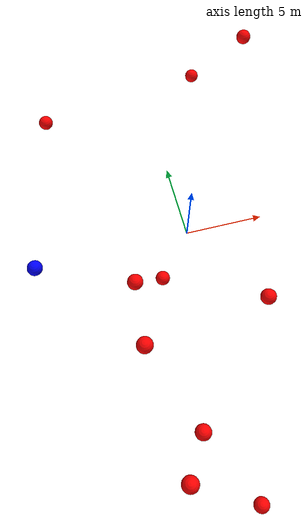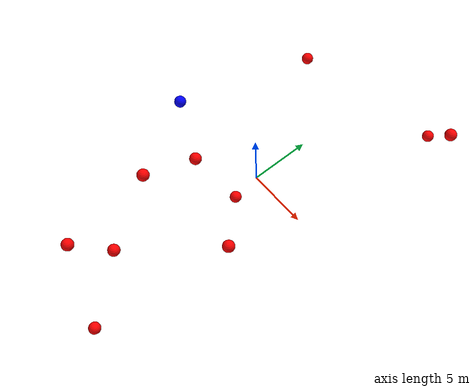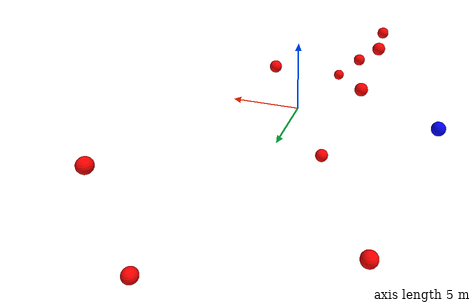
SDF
<?xml version="1.0" ?>
<sdf version="1.8">
    <world name="3d_world">
        <physics name="1ms" type="ode">
            <max_step_size>0.001</max_step_size>
            <real_time_factor>1.0</real_time_factor>
            <real_time_update_rate>1000.0</real_time_update_rate>
        </physics>
        <gravity>0 0 0</gravity>

        <plugin
            filename="gz-sim-physics-system"
            name="gz::sim::v8::systems::Physics">
        </plugin>
        <plugin
            filename="libignition-gazebo-user-commands-system.so"
            name="ignition::gazebo::systems::UserCommands">
        </plugin>
        <plugin
            filename="gz-sim-scene-broadcaster-system"
            name="gz::sim::systems::SceneBroadcaster">
        </plugin>
        <plugin
            filename="gz-sim-sensors-system"
            name="gz::sim::systems::Sensors">
            <render_engine>ogre2</render_engine>
        </plugin>

        <light type="directional" name="sun">
            <cast_shadows>true</cast_shadows>
            <pose>0 0 10 0 0 0</pose>
            <diffuse>0.8 0.8 0.8 1</diffuse>
            <specular>0.2 0.2 0.2 1</specular>
            <attenuation>
                <range>1000</range>
                <constant>0.9</constant>
                <linear>0.01</linear>
                <quadratic>0.001</quadratic>
            </attenuation>
            <direction>-0.5 0.1 -0.9</direction>
        </light>

        <!-- AGENTE -->
        <model name='agente' canonical_link='chassis'>
            <pose relative_to='world'>-10.0 0 0.0 0 0 0</pose>
            <link name='chassis'>
                <pose relative_to='__model__'>0.0 0 0.0 0 0 0</pose>
                <inertial>
                    <mass>1.14395</mass>
                    <inertia>
                        <ixx>0.095329</ixx>
                        <ixy>0</ixy>
                        <ixz>0</ixz>
                        <iyy>0.381317</iyy>
                        <iyz>0</iyz>
                        <izz>0.476646</izz>
                    </inertia>
                </inertial>
                <visual name='visual'>
                    <geometry>
                        <sphere>
                            <radius>0.5</radius>
                        </sphere>
                    </geometry>
                    <material>
                        <ambient>0.0 0.0 1.0 1</ambient>
                        <diffuse>0.0 0.0 1.0 1</diffuse>
                        <specular>0.0 0.0 1.0 1</specular>
                    </material>
                </visual>
                <collision name='collision'>
                    <geometry>
                        <sphere>
                            <radius>0.5</radius>
                        </sphere>
                    </geometry>
                </collision>
                <enable_gravity>false</enable_gravity>
            </link>

            <link name='lidar_link'>
                <pose relative_to='chassis'>0.0 0 0.1 0 0 0</pose>
                <inertial>
                    <mass>0.1</mass>
                    <inertia>
                        <ixx>0.000166667</ixx>
                        <iyy>0.000166667</iyy>
                        <izz>0.000166667</izz>
                    </inertia>
                </inertial>
                <collision name='collision'>
                    <geometry>
                        <cylinder>
                            <radius>0.05</radius>
                            <length>0.1</length>
                        </cylinder>
                    </geometry>
                </collision>
                <visual name='visual'>
                    <geometry>
                        <cylinder>
                            <radius>0.05</radius>
                            <length>0.1</length>
                        </cylinder>
                    </geometry>
                    <material>
                        <ambient>0.0 1.0 0.0 1</ambient>
                        <diffuse>0.0 1.0 0.0 1</diffuse>
                        <specular>0.0 1.0 0.0 1</specular>
                    </material>
                </visual>
                <sensor name="lidar" type="gpu_lidar">
                    <topic>scan</topic>
                    <update_rate>10</update_rate>
                    <lidar>
                        <scan>
                            <horizontal>
                                <samples>5000</samples>
                                <resolution>1</resolution>
                                <min_angle>-3.14159</min_angle>
                                <max_angle>3.14159</max_angle>
                            </horizontal>
                        </scan>
                        <range>
                            <min>0.1</min>
                            <max>10.0</max>
                            <resolution>0.01</resolution>
                        </range>
                    </lidar>
                    <visualize>true</visualize>
                    <always_on>true</always_on>
                    <update_rate>10</update_rate>
                    <pose_frame>lidar</pose_frame>
                </sensor>
                <enable_gravity>false</enable_gravity>
            </link>

            <joint name="lidar_joint" type="fixed">
                <parent>chassis</parent>
                <child>lidar_link</child>
            </joint>

            <plugin
                filename="ignition-gazebo-joint-state-publisher-system"
                name="ignition::gazebo::systems::JointStatePublisher">
            </plugin>
            <plugin
                filename="ignition-gazebo-odometry-publisher-system"
                name="ignition::gazebo::systems::OdometryPublisher">
                <dimensions>3</dimensions>
            </plugin>
            <plugin
                filename="ignition-gazebo-velocity-control-system"
                name="ignition::gazebo::systems::VelocityControl">
                <initial_linear>0.0 0 0</initial_linear>
                <initial_angular>0 0 0.0</initial_angular>
            </plugin>
            <plugin
                filename="libignition-gazebo-pose-publisher-system.so"
                name="ignition::gazebo::systems::PosePublisher">
                <topic>/agente/pose</topic>
                <frame_id>agente</frame_id>
                <update_rate>30</update_rate>
            </plugin>
        </model>

        <!-- OBSTACLE 1 -->
        <model name='obstacle_1' canonical_link='obstacle'>
            <static>false</static>
            <pose relative_to='world'>3.53 -5.67 0.54 0 0 0</pose>
            <link name='obstacle'>
                <pose relative_to='__model__'>0.0 0 0.0 0 0 0</pose>
                <visual name='visual'>
                    <geometry>
                        <sphere>
                            <radius>0.50</radius>
                        </sphere>
                    </geometry>
                    <material>
                        <ambient>1.0 0.0 0.0 1</ambient>
                        <diffuse>1.0 0.0 0.0 1</diffuse>
                        <specular>1.0 0.0 0.0 1</specular>
                    </material>
                </visual>
                <collision name='collision'>
                    <geometry>
                        <sphere>
                            <radius>0.50</radius>
                        </sphere>
                    </geometry>
                </collision>
                <enable_gravity>false</enable_gravity>
            </link>

            <plugin
                filename="ignition-gazebo-velocity-control-system"
                name="ignition::gazebo::systems::VelocityControl">
                <initial_linear>-0.05 1.07 -0.10</initial_linear>
                <initial_angular>0 0 0</initial_angular>
            </plugin>

            <plugin
                filename="ignition-gazebo-odometry-publisher-system"
                name="ignition::gazebo::systems::OdometryPublisher">
                <dimensions>3</dimensions>
            </plugin>
        </model>

        <!-- OBSTACLE 2 -->
        <model name='obstacle_2' canonical_link='obstacle'>
            <static>false</static>
            <pose relative_to='world'>-4.14 -2.84 0.81 0 0 0</pose>
            <link name='obstacle'>
                <pose relative_to='__model__'>0.0 0 0.0 0 0 0</pose>
                <visual name='visual'>
                    <geometry>
                        <sphere>
                            <radius>0.50</radius>
                        </sphere>
                    </geometry>
                    <material>
                        <ambient>1.0 0.0 0.0 1</ambient>
                        <diffuse>1.0 0.0 0.0 1</diffuse>
                        <specular>1.0 0.0 0.0 1</specular>
                    </material>
                </visual>
                <collision name='collision'>
                    <geometry>
                        <sphere>
                            <radius>0.50</radius>
                        </sphere>
                    </geometry>
                </collision>
                <enable_gravity>false</enable_gravity>
            </link>

            <plugin
                filename="ignition-gazebo-velocity-control-system"
                name="ignition::gazebo::systems::VelocityControl">
                <initial_linear>1.46 0.50 -0.14</initial_linear>
                <initial_angular>0 0 0</initial_angular>
            </plugin>

            <plugin
                filename="ignition-gazebo-odometry-publisher-system"
                name="ignition::gazebo::systems::OdometryPublisher">
                <dimensions>3</dimensions>
            </plugin>
        </model>

        <!-- OBSTACLE 3 -->
        <model name='obstacle_3' canonical_link='obstacle'>
            <static>false</static>
            <pose relative_to='world'>4.93 15.40 -3.15 0 0 0</pose>
            <link name='obstacle'>
                <pose relative_to='__model__'>0.0 0 0.0 0 0 0</pose>
                <visual name='visual'>
                    <geometry>
                        <sphere>
                            <radius>0.50</radius>
                        </sphere>
                    </geometry>
                    <material>
                        <ambient>1.0 0.0 0.0 1</ambient>
                        <diffuse>1.0 0.0 0.0 1</diffuse>
                        <specular>1.0 0.0 0.0 1</specular>
                    </material>
                </visual>
                <collision name='collision'>
                    <geometry>
                        <sphere>
                            <radius>0.50</radius>
                        </sphere>
                    </geometry>
                </collision>
                <enable_gravity>false</enable_gravity>
            </link>

            <plugin
                filename="ignition-gazebo-velocity-control-system"
                name="ignition::gazebo::systems::VelocityControl">
                <initial_linear>-0.01 -1.96 0.40</initial_linear>
                <initial_angular>0 0 0</initial_angular>
            </plugin>

            <plugin
                filename="ignition-gazebo-odometry-publisher-system"
                name="ignition::gazebo::systems::OdometryPublisher">
                <dimensions>3</dimensions>
            </plugin>
        </model>

        <!-- OBSTACLE 4 -->
        <model name='obstacle_4' canonical_link='obstacle'>
            <static>false</static>
            <pose relative_to='world'>0.20 -16.60 -4.47 0 0 0</pose>
            <link name='obstacle'>
                <pose relative_to='__model__'>0.0 0 0.0 0 0 0</pose>
                <visual name='visual'>
                    <geometry>
                        <sphere>
                            <radius>0.50</radius>
                        </sphere>
                    </geometry>
                    <material>
                        <ambient>1.0 0.0 0.0 1</ambient>
                        <diffuse>1.0 0.0 0.0 1</diffuse>
                        <specular>1.0 0.0 0.0 1</specular>
                    </material>
                </visual>
                <collision name='collision'>
                    <geometry>
                        <sphere>
                            <radius>0.50</radius>
                        </sphere>
                    </geometry>
                </collision>
                <enable_gravity>false</enable_gravity>
            </link>

            <plugin
                filename="ignition-gazebo-velocity-control-system"
                name="ignition::gazebo::systems::VelocityControl">
                <initial_linear>-0.33 1.90 0.51</initial_linear>
                <initial_angular>0 0 0</initial_angular>
            </plugin>

            <plugin
                filename="ignition-gazebo-odometry-publisher-system"
                name="ignition::gazebo::systems::OdometryPublisher">
                <dimensions>3</dimensions>
            </plugin>
        </model>

        <!-- OBSTACLE 5 -->
        <model name='obstacle_5' canonical_link='obstacle'>
            <static>false</static>
            <pose relative_to='world'>7.97 13.50 2.14 0 0 0</pose>
            <link name='obstacle'>
                <pose relative_to='__model__'>0.0 0 0.0 0 0 0</pose>
                <visual name='visual'>
                    <geometry>
                        <sphere>
                            <radius>0.50</radius>
                        </sphere>
                    </geometry>
                    <material>
                        <ambient>1.0 0.0 0.0 1</ambient>
                        <diffuse>1.0 0.0 0.0 1</diffuse>
                        <specular>1.0 0.0 0.0 1</specular>
                    </material>
                </visual>
                <collision name='collision'>
                    <geometry>
                        <sphere>
                            <radius>0.50</radius>
                        </sphere>
                    </geometry>
                </collision>
                <enable_gravity>false</enable_gravity>
            </link>

            <plugin
                filename="ignition-gazebo-velocity-control-system"
                name="ignition::gazebo::systems::VelocityControl">
                <initial_linear>-0.85 -1.79 -0.28</initial_linear>
                <initial_angular>0 0 0</initial_angular>
            </plugin>

            <plugin
                filename="ignition-gazebo-odometry-publisher-system"
                name="ignition::gazebo::systems::OdometryPublisher">
                <dimensions>3</dimensions>
            </plugin>
        </model>

        <!-- OBSTACLE 6 -->
        <model name='obstacle_6' canonical_link='obstacle'>
            <static>false</static>
            <pose relative_to='world'>-1.76 -0.85 -4.32 0 0 0</pose>
            <link name='obstacle'>
                <pose relative_to='__model__'>0.0 0 0.0 0 0 0</pose>
                <visual name='visual'>
                    <geometry>
                        <sphere>
                            <radius>0.50</radius>
                        </sphere>
                    </geometry>
                    <material>
                        <ambient>1.0 0.0 0.0 1</ambient>
                        <diffuse>1.0 0.0 0.0 1</diffuse>
                        <specular>1.0 0.0 0.0 1</specular>
                    </material>
                </visual>
                <collision name='collision'>
                    <geometry>
                        <sphere>
                            <radius>0.50</radius>
                        </sphere>
                    </geometry>
                </collision>
                <enable_gravity>false</enable_gravity>
            </link>

            <plugin
                filename="ignition-gazebo-velocity-control-system"
                name="ignition::gazebo::systems::VelocityControl">
                <initial_linear>0.87 0.17 0.85</initial_linear>
                <initial_angular>0 0 0</initial_angular>
            </plugin>

            <plugin
                filename="ignition-gazebo-odometry-publisher-system"
                name="ignition::gazebo::systems::OdometryPublisher">
                <dimensions>3</dimensions>
            </plugin>
        </model>

        <!-- OBSTACLE 7 -->
        <model name='obstacle_7' canonical_link='obstacle'>
            <static>false</static>
            <pose relative_to='world'>-2.45 -12.22 -0.73 0 0 0</pose>
            <link name='obstacle'>
                <pose relative_to='__model__'>0.0 0 0.0 0 0 0</pose>
                <visual name='visual'>
                    <geometry>
                        <sphere>
                            <radius>0.50</radius>
                        </sphere>
                    </geometry>
                    <material>
                        <ambient>1.0 0.0 0.0 1</ambient>
                        <diffuse>1.0 0.0 0.0 1</diffuse>
                        <specular>1.0 0.0 0.0 1</specular>
                    </material>
                </visual>
                <collision name='collision'>
                    <geometry>
                        <sphere>
                            <radius>0.50</radius>
                        </sphere>
                    </geometry>
                </collision>
                <enable_gravity>false</enable_gravity>
            </link>

            <plugin
                filename="ignition-gazebo-velocity-control-system"
                name="ignition::gazebo::systems::VelocityControl">
                <initial_linear>0.75 1.85 0.11</initial_linear>
                <initial_angular>0 0 0</initial_angular>
            </plugin>

            <plugin
                filename="ignition-gazebo-odometry-publisher-system"
                name="ignition::gazebo::systems::OdometryPublisher">
                <dimensions>3</dimensions>
            </plugin>
        </model>

        <!-- OBSTACLE 8 -->
        <model name='obstacle_8' canonical_link='obstacle'>
            <static>false</static>
            <pose relative_to='world'>-7.33 12.19 -1.37 0 0 0</pose>
            <link name='obstacle'>
                <pose relative_to='__model__'>0.0 0 0.0 0 0 0</pose>
                <visual name='visual'>
                    <geometry>
                        <sphere>
                            <radius>0.50</radius>
                        </sphere>
                    </geometry>
                    <material>
                        <ambient>1.0 0.0 0.0 1</ambient>
                        <diffuse>1.0 0.0 0.0 1</diffuse>
                        <specular>1.0 0.0 0.0 1</specular>
                    </material>
                </visual>
                <collision name='collision'>
                    <geometry>
                        <sphere>
                            <radius>0.50</radius>
                        </sphere>
                    </geometry>
                </collision>
                <enable_gravity>false</enable_gravity>
            </link>

            <plugin
                filename="ignition-gazebo-velocity-control-system"
                name="ignition::gazebo::systems::VelocityControl">
                <initial_linear>0.51 -1.92 0.22</initial_linear>
                <initial_angular>0 0 0</initial_angular>
            </plugin>

            <plugin
                filename="ignition-gazebo-odometry-publisher-system"
                name="ignition::gazebo::systems::OdometryPublisher">
                <dimensions>3</dimensions>
            </plugin>
        </model>

        <!-- OBSTACLE 9 -->
        <model name='obstacle_9' canonical_link='obstacle'>
            <static>false</static>
            <pose relative_to='world'>-4.10 -14.89 1.15 0 0 0</pose>
            <link name='obstacle'>
                <pose relative_to='__model__'>0.0 0 0.0 0 0 0</pose>
                <visual name='visual'>
                    <geometry>
                        <sphere>
                            <radius>0.50</radius>
                        </sphere>
                    </geometry>
                    <material>
                        <ambient>1.0 0.0 0.0 1</ambient>
                        <diffuse>1.0 0.0 0.0 1</diffuse>
                        <specular>1.0 0.0 0.0 1</specular>
                    </material>
                </visual>
                <collision name='collision'>
                    <geometry>
                        <sphere>
                            <radius>0.50</radius>
                        </sphere>
                    </geometry>
                </collision>
                <enable_gravity>false</enable_gravity>
            </link>

            <plugin
                filename="ignition-gazebo-velocity-control-system"
                name="ignition::gazebo::systems::VelocityControl">
                <initial_linear>1.20 1.60 -0.12</initial_linear>
                <initial_angular>0 0 0</initial_angular>
            </plugin>

            <plugin
                filename="ignition-gazebo-odometry-publisher-system"
                name="ignition::gazebo::systems::OdometryPublisher">
                <dimensions>3</dimensions>
            </plugin>
        </model>

        <!-- OBSTACLE 10 -->
        <model name='obstacle_10' canonical_link='obstacle'>
            <static>false</static>
            <pose relative_to='world'>-4.66 -7.36 2.42 0 0 0</pose>
            <link name='obstacle'>
                <pose relative_to='__model__'>0.0 0 0.0 0 0 0</pose>
                <visual name='visual'>
                    <geometry>
                        <sphere>
                            <radius>0.50</radius>
                        </sphere>
                    </geometry>
                    <material>
                        <ambient>1.0 0.0 0.0 1</ambient>
                        <diffuse>1.0 0.0 0.0 1</diffuse>
                        <specular>1.0 0.0 0.0 1</specular>
                    </material>
                </visual>
                <collision name='collision'>
                    <geometry>
                        <sphere>
                            <radius>0.50</radius>
                        </sphere>
                    </geometry>
                </collision>
                <enable_gravity>false</enable_gravity>
            </link>

            <plugin
                filename="ignition-gazebo-velocity-control-system"
                name="ignition::gazebo::systems::VelocityControl">
                <initial_linear>1.40 1.35 -0.45</initial_linear>
                <initial_angular>0 0 0</initial_angular>
            </plugin>

            <plugin
                filename="ignition-gazebo-odometry-publisher-system"
                name="ignition::gazebo::systems::OdometryPublisher">
                <dimensions>3</dimensions>
            </plugin>
        </model>

    </world>
</sdf>
